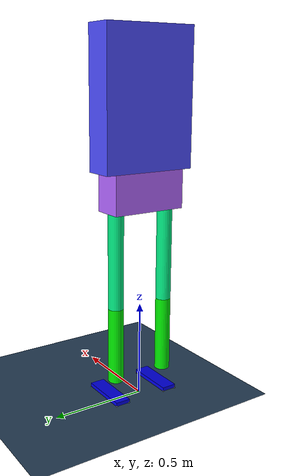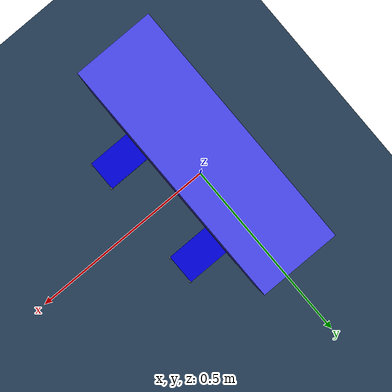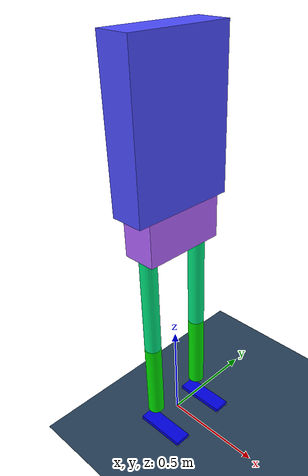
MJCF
<mujoco>
	<visual>
		<headlight ambient="0.5 0.5 0.5" />
		<rgba haze="0.15 0.25 0.35 1"/>
	</visual>

	<option timestep="0.001" integrator="Euler" gravity="0 0 -9.8" cone="elliptic" solver="PGS">
		<flag energy="enable" contact="enable" />
	</option>

    <asset>
	    <texture type="skybox" builtin="gradient" rgb1=".3 .5 .7" rgb2="0 0 0" width="32" height="512"/>
	    <texture name="body" type="cube" builtin="flat" mark="cross" width="127" height="1278" rgb1="0.8 0.6 0.4" rgb2="0.8 0.6 0.4" markrgb="1 1 1" random="0.01"/>
	    <material name="body" texture="body" texuniform="true" rgba="0.8 0.6 .4 1"/>
	    <texture name="grid" type="2d" builtin="checker" width="512" height="512" rgb1=".1 .2 .3" rgb2=".2 .3 .4"/>
	    <material name="grid" texture="grid" texrepeat="1 1" texuniform="true" reflectance=".2"/>
  	</asset>

  	<default>
  		<joint damping=".04"/>
  	</default>

	<worldbody>
		<geom type="plane" size="5 5 0.1"  pos="0 0 0" contype="1" material="grid"/> <!--rgba=".9 0 0 1"-->
		<body name="link0" pos="0 0 1.11" euler="0 0 0">
			<joint name="body" type="free"/>
			<geom type="box" size=".08 .20 .1" rgba="0.7 .4 1 1" mass="10" pos="0 0 0"/>  <!--rgba=".9 0 0 1"-->
			<body name="link1" pos="0 -0.15 -0.1" euler="0 0 0">
				<joint name="HIPRY" type="hinge" axis = "0 1 0" pos="0 0 0" limited="true" range="-120 120"/>
				<joint name="HIPRX" type="hinge" axis = "1 0 0" pos="0 0 0" limited="true" range="-90 90"/>
				<joint name="HIPRZ" type="hinge" axis = "0 0 1" pos="0 0 0" limited="true" range="-90 90"/>
				<geom type="cylinder" size="0.04 0.25" rgba="0 .9 0.5 1" mass="3" pos="0 0 -0.25"/>

				<body name="link2" pos="0 0 -0.5" euler="0 0 0">
					<joint name="KNEERY" type="hinge" axis = "0 1 0" pos="0 0 0" limited="true" range="0 170"/>
					<geom type="cylinder" size="0.04 0.2" rgba="0 .9 0 1" mass="3" pos="0 0 -0.2" contype="0"/> <!--size="0.02 0.25" pos="0 0 -0.25-->

					<body name="link3" pos="0 0 -0.5" euler="0 0 0">
						<joint name="ANKLERY" type="hinge" axis = "0 1 0" pos="0 0 0" limited="true" range="-75 60"/>
						<joint name="ANKLERX" type="hinge" axis = "1 0 0" pos="0 0 0" limited="true" range="-45 45"/>
						<geom type="box" size="0.13 0.04 0.01" rgba="0 0 .9 1" mass="0.5" pos="0.06 0 0" condim="4" friction="1000 200 200" />
						<site name="t1" pos="0.19 0.038 -0.01" size="0.004"/>
						<site name="t2" pos="-0.07 0.038 -0.01" size="0.004"/>
						<site name="t3" pos="0.19 -0.038 -0.01" size="0.004"/>
						<site name="t4" pos="-0.07 -0.038 -0.01" size="0.004"/>
					</body>
				</body>
			</body>

			<body name="link4" pos="0 0.15 -0.1" euler="0 0 0">
				<joint name="HIPLY" type="hinge" axis = "0 1 0" pos="0 0 0" limited="true" range="-120 120"/>
				<joint name="HIPLX" type="hinge" axis = "1 0 0" pos="0 0 0" limited="true" range="-90 90"/>
				<joint name="HIPLZ" type="hinge" axis = "0 0 1" pos="0 0 0" limited="true" range="-90 90"/>
				<geom type="cylinder" size="0.04 0.25" rgba="0 .9 0.5 1" mass="3" pos="0 0 -0.25"/>

				<body name="link5" pos="0 0 -0.5" euler="0 0 0">
					<joint name="KNEELY" type="hinge" axis = "0 1 0" pos="0 0 0" limited="true" range="0 170"/>
					<geom type="cylinder" size="0.04 0.2" rgba="0 .9 0 1" mass="3" pos="0 0 -0.2" contype="0"/>

					<body name="link6" pos="0 0 -0.5" euler="0 0 0">
						<joint name="ANKLELY" type="hinge" axis = "0 1 0" pos="0 0 0" limited="true" range="-75 60"/>
						<joint name="ANKLELX" type="hinge" axis = "1 0 0" pos="0 0 0" limited="true" range="-45 45"/>
						<geom type="box" size="0.13 0.04 0.01" rgba="0 0 .9 1" mass="0.5" pos="0.06 0 0" condim="4" friction="1000 200 200" />
						<site name="t5" pos="0.19 0.038 -0.01" size="0.004"/>
						<site name="t6" pos="-0.07 0.038 -0.01" size="0.004"/>
						<site name="t7" pos="0.19 -0.038 -0.01" size="0.004"/>
						<site name="t8" pos="-0.07 -0.038 -0.01" size="0.004"/>
					</body>
				</body>
			</body>

            <body name="link7" pos="0 0 0.1" euler="0 0 0">
                <joint name="WAISTY" type="hinge" axis = "0 1 0" pos="0 0 0" limited="true" range="-80 80"/>
				<joint name="WAISTX" type="hinge" axis = "1 0 0" pos="0 0 0" limited="true" range="-70 70"/>
                <geom type="box" size=".08 .25 .35" rgba="0.3 .3 1 1" mass="20" pos="0 0 0.35"/>
            </body>
		</body>
	</worldbody>
	<actuator>
		<motor name="torque1"  joint="HIPRY" 	gear="1" ctrlrange="-1800 1800" ctrllimited="true"/>
		<motor name="torque2"  joint="HIPRX" 	gear="1" ctrlrange="-1800 1800" ctrllimited="true"/>
		<motor name="torque3"  joint="HIPRZ" 	gear="1" ctrlrange="-1100 1100" ctrllimited="true"/>
		<motor name="torque4"  joint="KNEERY" 	gear="1" ctrlrange="-1400 1400" ctrllimited="true"/>
		<motor name="torque5"  joint="ANKLERY" 	gear="1" ctrlrange="-1200 1200" ctrllimited="true"/>
		<motor name="torque6"  joint="ANKLERX" 	gear="1" ctrlrange="-1200 1200" ctrllimited="true"/>
		<motor name="torque7"  joint="HIPLY" 	gear="1" ctrlrange="-1800 1800" ctrllimited="true"/>
		<motor name="torque8"  joint="HIPLX" 	gear="1" ctrlrange="-1800 1800" ctrllimited="true"/>
		<motor name="torque9"  joint="HIPLZ" 	gear="1" ctrlrange="-1100 1100" ctrllimited="true"/>
		<motor name="torque10" joint="KNEELY" 	gear="1" ctrlrange="-1400 1400" ctrllimited="true"/>
		<motor name="torque11" joint="ANKLELY" 	gear="1" ctrlrange="-1200 1200" ctrllimited="true"/>
		<motor name="torque12" joint="ANKLELX" 	gear="1" ctrlrange="-1200 1200" ctrllimited="true"/>
        <motor name="torque13" joint="WAISTY" 	gear="1" ctrlrange="-1200 1200" ctrllimited="true"/>
		<motor name="torque14" joint="WAISTX" 	gear="1" ctrlrange="-1200 1200" ctrllimited="true"/>
	</actuator>
	<sensor>
		<touch site="t1" />
		<touch site="t2" />
		<touch site="t3" />
		<touch site="t4" />
		<touch site="t5" />
		<touch site="t6" />
		<touch site="t7" />
		<touch site="t8" />
	</sensor>
</mujoco>
